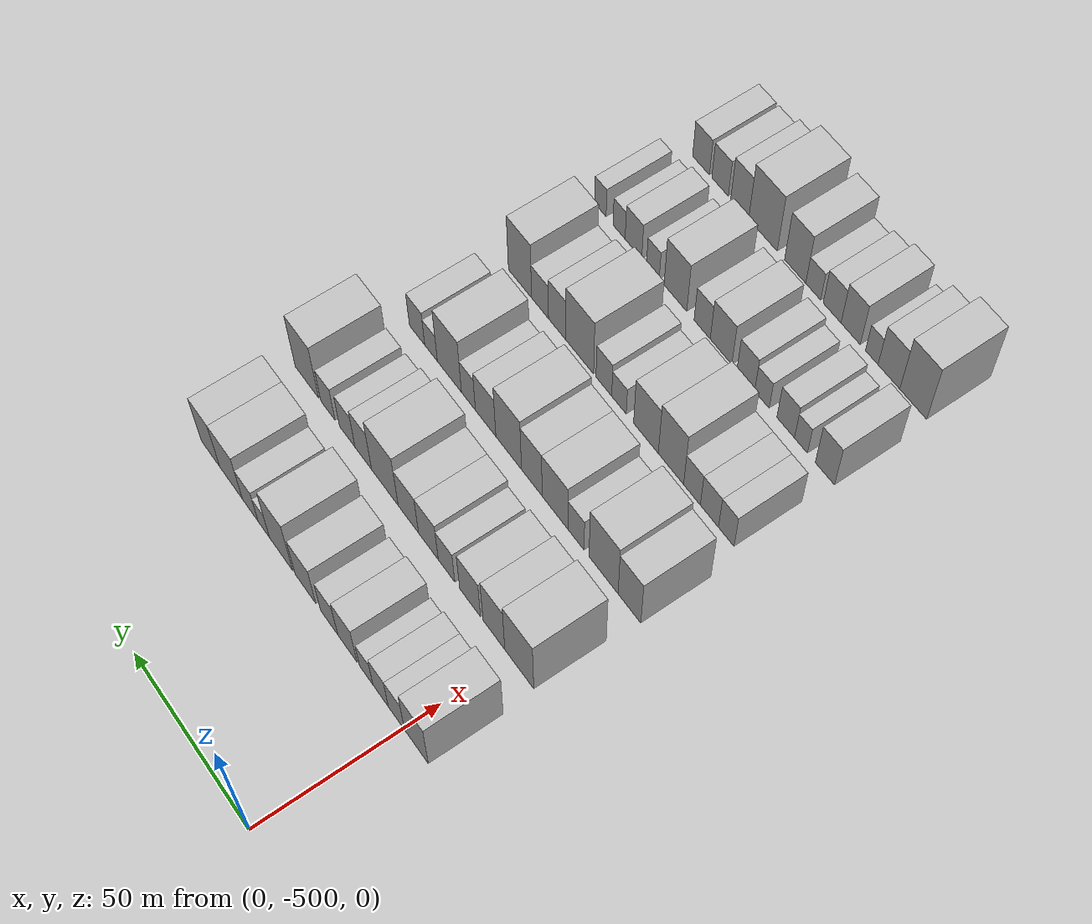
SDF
<sdf version="1.6">
 <world name="default">
  <model name="building_1">
   <static>1</static>
   <pose>50.0000 -505.1877 0 0.000000 0.000000 0.000000</pose>
   <link name="link">
    <pose>0 0 10.50 0 0 0</pose>
    <collision name="collision"><geometry><box><size>20.0000 9.6246 21.0000</size></box></geometry></collision>
    <visual name="visual">
     <cast_shadows>0</cast_shadows>
     <geometry><box><size>20.0000 9.6246 21.0000</size></box></geometry>
     <material>
      <script>
       <uri>model://HANNAS_wall/materials/scripts</uri>
       <uri>model://HANNAS_wall/materials/textures</uri>
       <name>vrc/HANNAS_wall</name>
      </script>
     </material>
    </visual>
   </link>
  </model>
  <model name="building_2">
   <static>1</static>
   <pose>50.0000 -497.0915 0 0.000000 0.000000 0.000000</pose>
   <link name="link">
    <pose>0 0 7.50 0 0 0</pose>
    <collision name="collision"><geometry><box><size>20.0000 6.5677 15.0000</size></box></geometry></collision>
    <visual name="visual">
     <cast_shadows>0</cast_shadows>
     <geometry><box><size>20.0000 6.5677 15.0000</size></box></geometry>
     <material>
      <script>
       <uri>model://HANNAS_wall/materials/scripts</uri>
       <uri>model://HANNAS_wall/materials/textures</uri>
       <name>vrc/HANNAS_wall</name>
      </script>
     </material>
    </visual>
   </link>
  </model>
  <model name="building_3">
   <static>1</static>
   <pose>50.0000 -490.6406 0 0.000000 0.000000 0.000000</pose>
   <link name="link">
    <pose>0 0 7.50 0 0 0</pose>
    <collision name="collision"><geometry><box><size>20.0000 6.3341 15.0000</size></box></geometry></collision>
    <visual name="visual">
     <cast_shadows>0</cast_shadows>
     <geometry><box><size>20.0000 6.3341 15.0000</size></box></geometry>
     <material>
      <script>
       <uri>model://HANNAS_wall/materials/scripts</uri>
       <uri>model://HANNAS_wall/materials/textures</uri>
       <name>vrc/HANNAS_wall</name>
      </script>
     </material>
    </visual>
   </link>
  </model>
  <model name="building_4">
   <static>1</static>
   <pose>50.0000 -484.6623 0 0.000000 0.000000 0.000000</pose>
   <link name="link">
    <pose>0 0 6.00 0 0 0</pose>
    <collision name="collision"><geometry><box><size>20.0000 5.6226 12.0000</size></box></geometry></collision>
    <visual name="visual">
     <cast_shadows>0</cast_shadows>
     <geometry><box><size>20.0000 5.6226 12.0000</size></box></geometry>
     <material>
      <script>
       <uri>model://HANNAS_wall/materials/scripts</uri>
       <uri>model://HANNAS_wall/materials/textures</uri>
       <name>vrc/HANNAS_wall</name>
      </script>
     </material>
    </visual>
   </link>
  </model>
  <model name="building_5">
   <static>1</static>
   <pose>50.0000 -476.7808 0 0.000000 0.000000 0.000000</pose>
   <link name="link">
    <pose>0 0 9.00 0 0 0</pose>
    <collision name="collision"><geometry><box><size>20.0000 8.1402 18.0000</size></box></geometry></collision>
    <visual name="visual">
     <cast_shadows>0</cast_shadows>
     <geometry><box><size>20.0000 8.1402 18.0000</size></box></geometry>
     <material>
      <script>
       <uri>model://HANNAS_wall/materials/scripts</uri>
       <uri>model://HANNAS_wall/materials/textures</uri>
       <name>vrc/HANNAS_wall</name>
      </script>
     </material>
    </visual>
   </link>
  </model>
  <model name="building_6">
   <static>1</static>
   <pose>50.0000 -469.0146 0 0.000000 0.000000 0.000000</pose>
   <link name="link">
    <pose>0 0 7.50 0 0 0</pose>
    <collision name="collision"><geometry><box><size>20.0000 7.3923 15.0000</size></box></geometry></collision>
    <visual name="visual">
     <cast_shadows>0</cast_shadows>
     <geometry><box><size>20.0000 7.3923 15.0000</size></box></geometry>
     <material>
      <script>
       <uri>model://HANNAS_wall/materials/scripts</uri>
       <uri>model://HANNAS_wall/materials/textures</uri>
       <name>vrc/HANNAS_wall</name>
      </script>
     </material>
    </visual>
   </link>
  </model>
  <model name="building_7">
   <static>1</static>
   <pose>50.0000 -458.8198 0 0.000000 0.000000 0.000000</pose>
   <link name="link">
    <pose>0 0 9.00 0 0 0</pose>
    <collision name="collision"><geometry><box><size>20.0000 8.9973 18.0000</size></box></geometry></collision>
    <visual name="visual">
     <cast_shadows>0</cast_shadows>
     <geometry><box><size>20.0000 8.9973 18.0000</size></box></geometry>
     <material>
      <script>
       <uri>model://HANNAS_wall/materials/scripts</uri>
       <uri>model://HANNAS_wall/materials/textures</uri>
       <name>vrc/HANNAS_wall</name>
      </script>
     </material>
    </visual>
   </link>
  </model>
  <model name="building_8">
   <static>1</static>
   <pose>50.0000 -448.1830 0 0.000000 0.000000 0.000000</pose>
   <link name="link">
    <pose>0 0 12.00 0 0 0</pose>
    <collision name="collision"><geometry><box><size>20.0000 10.2763 24.0000</size></box></geometry></collision>
    <visual name="visual">
     <cast_shadows>0</cast_shadows>
     <geometry><box><size>20.0000 10.2763 24.0000</size></box></geometry>
     <material>
      <script>
       <uri>model://HANNAS_wall/materials/scripts</uri>
       <uri>model://HANNAS_wall/materials/textures</uri>
       <name>vrc/HANNAS_wall</name>
      </script>
     </material>
    </visual>
   </link>
  </model>
  <model name="building_9">
   <static>1</static>
   <pose>50.0000 -440.5058 0 0.000000 0.000000 0.000000</pose>
   <link name="link">
    <pose>0 0 6.00 0 0 0</pose>
    <collision name="collision"><geometry><box><size>20.0000 5.0780 12.0000</size></box></geometry></collision>
    <visual name="visual">
     <cast_shadows>0</cast_shadows>
     <geometry><box><size>20.0000 5.0780 12.0000</size></box></geometry>
     <material>
      <script>
       <uri>model://HANNAS_wall/materials/scripts</uri>
       <uri>model://HANNAS_wall/materials/textures</uri>
       <name>vrc/HANNAS_wall</name>
      </script>
     </material>
    </visual>
   </link>
  </model>
  <model name="building_10">
   <static>1</static>
   <pose>50.0000 -434.4570 0 0.000000 0.000000 0.000000</pose>
   <link name="link">
    <pose>0 0 7.50 0 0 0</pose>
    <collision name="collision"><geometry><box><size>20.0000 7.0197 15.0000</size></box></geometry></collision>
    <visual name="visual">
     <cast_shadows>0</cast_shadows>
     <geometry><box><size>20.0000 7.0197 15.0000</size></box></geometry>
     <material>
      <script>
       <uri>model://HANNAS_wall/materials/scripts</uri>
       <uri>model://HANNAS_wall/materials/textures</uri>
       <name>vrc/HANNAS_wall</name>
      </script>
     </material>
    </visual>
   </link>
  </model>
  <model name="building_11">
   <static>1</static>
   <pose>50.0000 -425.7513 0 0.000000 0.000000 0.000000</pose>
   <link name="link">
    <pose>0 0 10.50 0 0 0</pose>
    <collision name="collision"><geometry><box><size>20.0000 10.3918 21.0000</size></box></geometry></collision>
    <visual name="visual">
     <cast_shadows>0</cast_shadows>
     <geometry><box><size>20.0000 10.3918 21.0000</size></box></geometry>
     <material>
      <script>
       <uri>model://HANNAS_wall/materials/scripts</uri>
       <uri>model://HANNAS_wall/materials/textures</uri>
       <name>vrc/HANNAS_wall</name>
      </script>
     </material>
    </visual>
   </link>
  </model>
  <model name="building_12">
   <static>1</static>
   <pose>50.0000 -416.2189 0 0.000000 0.000000 0.000000</pose>
   <link name="link">
    <pose>0 0 10.50 0 0 0</pose>
    <collision name="collision"><geometry><box><size>20.0000 8.6729 21.0000</size></box></geometry></collision>
    <visual name="visual">
     <cast_shadows>0</cast_shadows>
     <geometry><box><size>20.0000 8.6729 21.0000</size></box></geometry>
     <material>
      <script>
       <uri>model://HANNAS_wall/materials/scripts</uri>
       <uri>model://HANNAS_wall/materials/textures</uri>
       <name>vrc/HANNAS_wall</name>
      </script>
     </material>
    </visual>
   </link>
  </model>
  <model name="building_115">
   <static>1</static>
   <pose>79.0000 -503.2548 0 0.000000 0.000000 0.000000</pose>
   <link name="link">
    <pose>0 0 12.00 0 0 0</pose>
    <collision name="collision"><geometry><box><size>20.0000 11.4904 24.0000</size></box></geometry></collision>
    <visual name="visual">
     <cast_shadows>0</cast_shadows>
     <geometry><box><size>20.0000 11.4904 24.0000</size></box></geometry>
     <material>
      <script>
       <uri>model://HANNAS_wall/materials/scripts</uri>
       <uri>model://HANNAS_wall/materials/textures</uri>
       <name>vrc/HANNAS_wall</name>
      </script>
     </material>
    </visual>
   </link>
  </model>
  <model name="building_116">
   <static>1</static>
   <pose>79.0000 -493.1154 0 0.000000 0.000000 0.000000</pose>
   <link name="link">
    <pose>0 0 10.50 0 0 0</pose>
    <collision name="collision"><geometry><box><size>20.0000 8.7883 21.0000</size></box></geometry></collision>
    <visual name="visual">
     <cast_shadows>0</cast_shadows>
     <geometry><box><size>20.0000 8.7883 21.0000</size></box></geometry>
     <material>
      <script>
       <uri>model://HANNAS_wall/materials/scripts</uri>
       <uri>model://HANNAS_wall/materials/textures</uri>
       <name>vrc/HANNAS_wall</name>
      </script>
     </material>
    </visual>
   </link>
  </model>
  <model name="building_117">
   <static>1</static>
   <pose>79.0000 -483.4463 0 0.000000 0.000000 0.000000</pose>
   <link name="link">
    <pose>0 0 9.00 0 0 0</pose>
    <collision name="collision"><geometry><box><size>20.0000 8.5500 18.0000</size></box></geometry></collision>
    <visual name="visual">
     <cast_shadows>0</cast_shadows>
     <geometry><box><size>20.0000 8.5500 18.0000</size></box></geometry>
     <material>
      <script>
       <uri>model://HANNAS_wall/materials/scripts</uri>
       <uri>model://HANNAS_wall/materials/textures</uri>
       <name>vrc/HANNAS_wall</name>
      </script>
     </material>
    </visual>
   </link>
  </model>
  <model name="building_118">
   <static>1</static>
   <pose>79.0000 -473.7268 0 0.000000 0.000000 0.000000</pose>
   <link name="link">
    <pose>0 0 7.50 0 0 0</pose>
    <collision name="collision"><geometry><box><size>20.0000 6.8890 15.0000</size></box></geometry></collision>
    <visual name="visual">
     <cast_shadows>0</cast_shadows>
     <geometry><box><size>20.0000 6.8890 15.0000</size></box></geometry>
     <material>
      <script>
       <uri>model://HANNAS_wall/materials/scripts</uri>
       <uri>model://HANNAS_wall/materials/textures</uri>
       <name>vrc/HANNAS_wall</name>
      </script>
     </material>
    </visual>
   </link>
  </model>
  <model name="building_119">
   <static>1</static>
   <pose>79.0000 -466.1343 0 0.000000 0.000000 0.000000</pose>
   <link name="link">
    <pose>0 0 9.00 0 0 0</pose>
    <collision name="collision"><geometry><box><size>20.0000 8.2961 18.0000</size></box></geometry></collision>
    <visual name="visual">
     <cast_shadows>0</cast_shadows>
     <geometry><box><size>20.0000 8.2961 18.0000</size></box></geometry>
     <material>
      <script>
       <uri>model://HANNAS_wall/materials/scripts</uri>
       <uri>model://HANNAS_wall/materials/textures</uri>
       <name>vrc/HANNAS_wall</name>
      </script>
     </material>
    </visual>
   </link>
  </model>
  <model name="building_120">
   <static>1</static>
   <pose>79.0000 -457.6497 0 0.000000 0.000000 0.000000</pose>
   <link name="link">
    <pose>0 0 9.00 0 0 0</pose>
    <collision name="collision"><geometry><box><size>20.0000 8.6731 18.0000</size></box></geometry></collision>
    <visual name="visual">
     <cast_shadows>0</cast_shadows>
     <geometry><box><size>20.0000 8.6731 18.0000</size></box></geometry>
     <material>
      <script>
       <uri>model://HANNAS_wall/materials/scripts</uri>
       <uri>model://HANNAS_wall/materials/textures</uri>
       <name>vrc/HANNAS_wall</name>
      </script>
     </material>
    </visual>
   </link>
  </model>
  <model name="building_121">
   <static>1</static>
   <pose>79.0000 -447.5465 0 0.000000 0.000000 0.000000</pose>
   <link name="link">
    <pose>0 0 12.00 0 0 0</pose>
    <collision name="collision"><geometry><box><size>20.0000 11.5332 24.0000</size></box></geometry></collision>
    <visual name="visual">
     <cast_shadows>0</cast_shadows>
     <geometry><box><size>20.0000 11.5332 24.0000</size></box></geometry>
     <material>
      <script>
       <uri>model://HANNAS_wall/materials/scripts</uri>
       <uri>model://HANNAS_wall/materials/textures</uri>
       <name>vrc/HANNAS_wall</name>
      </script>
     </material>
    </visual>
   </link>
  </model>
  <model name="building_122">
   <static>1</static>
   <pose>79.0000 -438.1325 0 0.000000 0.000000 0.000000</pose>
   <link name="link">
    <pose>0 0 9.00 0 0 0</pose>
    <collision name="collision"><geometry><box><size>20.0000 7.2948 18.0000</size></box></geometry></collision>
    <visual name="visual">
     <cast_shadows>0</cast_shadows>
     <geometry><box><size>20.0000 7.2948 18.0000</size></box></geometry>
     <material>
      <script>
       <uri>model://HANNAS_wall/materials/scripts</uri>
       <uri>model://HANNAS_wall/materials/textures</uri>
       <name>vrc/HANNAS_wall</name>
      </script>
     </material>
    </visual>
   </link>
  </model>
  <model name="building_123">
   <static>1</static>
   <pose>79.0000 -431.0398 0 0.000000 0.000000 0.000000</pose>
   <link name="link">
    <pose>0 0 7.50 0 0 0</pose>
    <collision name="collision"><geometry><box><size>20.0000 6.8907 15.0000</size></box></geometry></collision>
    <visual name="visual">
     <cast_shadows>0</cast_shadows>
     <geometry><box><size>20.0000 6.8907 15.0000</size></box></geometry>
     <material>
      <script>
       <uri>model://HANNAS_wall/materials/scripts</uri>
       <uri>model://HANNAS_wall/materials/textures</uri>
       <name>vrc/HANNAS_wall</name>
      </script>
     </material>
    </visual>
   </link>
  </model>
  <model name="building_124">
   <static>1</static>
   <pose>79.0000 -422.3800 0 0.000000 0.000000 0.000000</pose>
   <link name="link">
    <pose>0 0 7.50 0 0 0</pose>
    <collision name="collision"><geometry><box><size>20.0000 6.4289 15.0000</size></box></geometry></collision>
    <visual name="visual">
     <cast_shadows>0</cast_shadows>
     <geometry><box><size>20.0000 6.4289 15.0000</size></box></geometry>
     <material>
      <script>
       <uri>model://HANNAS_wall/materials/scripts</uri>
       <uri>model://HANNAS_wall/materials/textures</uri>
       <name>vrc/HANNAS_wall</name>
      </script>
     </material>
    </visual>
   </link>
  </model>
  <model name="building_125">
   <static>1</static>
   <pose>79.0000 -412.8363 0 0.000000 0.000000 0.000000</pose>
   <link name="link">
    <pose>0 0 12.00 0 0 0</pose>
    <collision name="collision"><geometry><box><size>20.0000 10.6585 24.0000</size></box></geometry></collision>
    <visual name="visual">
     <cast_shadows>0</cast_shadows>
     <geometry><box><size>20.0000 10.6585 24.0000</size></box></geometry>
     <material>
      <script>
       <uri>model://HANNAS_wall/materials/scripts</uri>
       <uri>model://HANNAS_wall/materials/textures</uri>
       <name>vrc/HANNAS_wall</name>
      </script>
     </material>
    </visual>
   </link>
  </model>
  <model name="building_229">
   <static>1</static>
   <pose>108.0000 -505.5721 0 0.000000 0.000000 0.000000</pose>
   <link name="link">
    <pose>0 0 10.50 0 0 0</pose>
    <collision name="collision"><geometry><box><size>20.0000 8.8557 21.0000</size></box></geometry></collision>
    <visual name="visual">
     <cast_shadows>0</cast_shadows>
     <geometry><box><size>20.0000 8.8557 21.0000</size></box></geometry>
     <material>
      <script>
       <uri>model://HANNAS_wall/materials/scripts</uri>
       <uri>model://HANNAS_wall/materials/textures</uri>
       <name>vrc/HANNAS_wall</name>
      </script>
     </material>
    </visual>
   </link>
  </model>
  <model name="building_230">
   <static>1</static>
   <pose>108.0000 -495.4187 0 0.000000 0.000000 0.000000</pose>
   <link name="link">
    <pose>0 0 12.00 0 0 0</pose>
    <collision name="collision"><geometry><box><size>20.0000 11.4512 24.0000</size></box></geometry></collision>
    <visual name="visual">
     <cast_shadows>0</cast_shadows>
     <geometry><box><size>20.0000 11.4512 24.0000</size></box></geometry>
     <material>
      <script>
       <uri>model://HANNAS_wall/materials/scripts</uri>
       <uri>model://HANNAS_wall/materials/textures</uri>
       <name>vrc/HANNAS_wall</name>
      </script>
     </material>
    </visual>
   </link>
  </model>
  <model name="building_231">
   <static>1</static>
   <pose>108.0000 -484.4381 0 0.000000 0.000000 0.000000</pose>
   <link name="link">
    <pose>0 0 7.50 0 0 0</pose>
    <collision name="collision"><geometry><box><size>20.0000 6.5100 15.0000</size></box></geometry></collision>
    <visual name="visual">
     <cast_shadows>0</cast_shadows>
     <geometry><box><size>20.0000 6.5100 15.0000</size></box></geometry>
     <material>
      <script>
       <uri>model://HANNAS_wall/materials/scripts</uri>
       <uri>model://HANNAS_wall/materials/textures</uri>
       <name>vrc/HANNAS_wall</name>
      </script>
     </material>
    </visual>
   </link>
  </model>
  <model name="building_232">
   <static>1</static>
   <pose>108.0000 -475.9594 0 0.000000 0.000000 0.000000</pose>
   <link name="link">
    <pose>0 0 10.50 0 0 0</pose>
    <collision name="collision"><geometry><box><size>20.0000 10.4474 21.0000</size></box></geometry></collision>
    <visual name="visual">
     <cast_shadows>0</cast_shadows>
     <geometry><box><size>20.0000 10.4474 21.0000</size></box></geometry>
     <material>
      <script>
       <uri>model://HANNAS_wall/materials/scripts</uri>
       <uri>model://HANNAS_wall/materials/textures</uri>
       <name>vrc/HANNAS_wall</name>
      </script>
     </material>
    </visual>
   </link>
  </model>
  <model name="building_233">
   <static>1</static>
   <pose>108.0000 -466.4582 0 0.000000 0.000000 0.000000</pose>
   <link name="link">
    <pose>0 0 10.50 0 0 0</pose>
    <collision name="collision"><geometry><box><size>20.0000 8.5550 21.0000</size></box></geometry></collision>
    <visual name="visual">
     <cast_shadows>0</cast_shadows>
     <geometry><box><size>20.0000 8.5550 21.0000</size></box></geometry>
     <material>
      <script>
       <uri>model://HANNAS_wall/materials/scripts</uri>
       <uri>model://HANNAS_wall/materials/textures</uri>
       <name>vrc/HANNAS_wall</name>
      </script>
     </material>
    </visual>
   </link>
  </model>
  <model name="building_234">
   <static>1</static>
   <pose>108.0000 -456.7893 0 0.000000 0.000000 0.000000</pose>
   <link name="link">
    <pose>0 0 12.00 0 0 0</pose>
    <collision name="collision"><geometry><box><size>20.0000 10.7829 24.0000</size></box></geometry></collision>
    <visual name="visual">
     <cast_shadows>0</cast_shadows>
     <geometry><box><size>20.0000 10.7829 24.0000</size></box></geometry>
     <material>
      <script>
       <uri>model://HANNAS_wall/materials/scripts</uri>
       <uri>model://HANNAS_wall/materials/textures</uri>
       <name>vrc/HANNAS_wall</name>
      </script>
     </material>
    </visual>
   </link>
  </model>
  <model name="building_235">
   <static>1</static>
   <pose>108.0000 -447.0462 0 0.000000 0.000000 0.000000</pose>
   <link name="link">
    <pose>0 0 9.00 0 0 0</pose>
    <collision name="collision"><geometry><box><size>20.0000 8.7033 18.0000</size></box></geometry></collision>
    <visual name="visual">
     <cast_shadows>0</cast_shadows>
     <geometry><box><size>20.0000 8.7033 18.0000</size></box></geometry>
     <material>
      <script>
       <uri>model://HANNAS_wall/materials/scripts</uri>
       <uri>model://HANNAS_wall/materials/textures</uri>
       <name>vrc/HANNAS_wall</name>
      </script>
     </material>
    </visual>
   </link>
  </model>
  <model name="building_236">
   <static>1</static>
   <pose>108.0000 -439.6853 0 0.000000 0.000000 0.000000</pose>
   <link name="link">
    <pose>0 0 7.50 0 0 0</pose>
    <collision name="collision"><geometry><box><size>20.0000 6.0184 15.0000</size></box></geometry></collision>
    <visual name="visual">
     <cast_shadows>0</cast_shadows>
     <geometry><box><size>20.0000 6.0184 15.0000</size></box></geometry>
     <material>
      <script>
       <uri>model://HANNAS_wall/materials/scripts</uri>
       <uri>model://HANNAS_wall/materials/textures</uri>
       <name>vrc/HANNAS_wall</name>
      </script>
     </material>
    </visual>
   </link>
  </model>
  <model name="building_237">
   <static>1</static>
   <pose>108.0000 -431.4216 0 0.000000 0.000000 0.000000</pose>
   <link name="link">
    <pose>0 0 12.00 0 0 0</pose>
    <collision name="collision"><geometry><box><size>20.0000 10.5092 24.0000</size></box></geometry></collision>
    <visual name="visual">
     <cast_shadows>0</cast_shadows>
     <geometry><box><size>20.0000 10.5092 24.0000</size></box></geometry>
     <material>
      <script>
       <uri>model://HANNAS_wall/materials/scripts</uri>
       <uri>model://HANNAS_wall/materials/textures</uri>
       <name>vrc/HANNAS_wall</name>
      </script>
     </material>
    </visual>
   </link>
  </model>
  <model name="building_238">
   <static>1</static>
   <pose>108.0000 -423.3727 0 0.000000 0.000000 0.000000</pose>
   <link name="link">
    <pose>0 0 6.00 0 0 0</pose>
    <collision name="collision"><geometry><box><size>20.0000 5.5886 12.0000</size></box></geometry></collision>
    <visual name="visual">
     <cast_shadows>0</cast_shadows>
     <geometry><box><size>20.0000 5.5886 12.0000</size></box></geometry>
     <material>
      <script>
       <uri>model://HANNAS_wall/materials/scripts</uri>
       <uri>model://HANNAS_wall/materials/textures</uri>
       <name>vrc/HANNAS_wall</name>
      </script>
     </material>
    </visual>
   </link>
  </model>
  <model name="building_239">
   <static>1</static>
   <pose>108.0000 -417.1980 0 0.000000 0.000000 0.000000</pose>
   <link name="link">
    <pose>0 0 7.50 0 0 0</pose>
    <collision name="collision"><geometry><box><size>20.0000 6.7609 15.0000</size></box></geometry></collision>
    <visual name="visual">
     <cast_shadows>0</cast_shadows>
     <geometry><box><size>20.0000 6.7609 15.0000</size></box></geometry>
     <material>
      <script>
       <uri>model://HANNAS_wall/materials/scripts</uri>
       <uri>model://HANNAS_wall/materials/textures</uri>
       <name>vrc/HANNAS_wall</name>
      </script>
     </material>
    </visual>
   </link>
  </model>
  <model name="building_339">
   <static>1</static>
   <pose>137.0000 -503.9896 0 0.000000 0.000000 0.000000</pose>
   <link name="link">
    <pose>0 0 7.50 0 0 0</pose>
    <collision name="collision"><geometry><box><size>20.0000 6.0208 15.0000</size></box></geometry></collision>
    <visual name="visual">
     <cast_shadows>0</cast_shadows>
     <geometry><box><size>20.0000 6.0208 15.0000</size></box></geometry>
     <material>
      <script>
       <uri>model://HANNAS_wall/materials/scripts</uri>
       <uri>model://HANNAS_wall/materials/textures</uri>
       <name>vrc/HANNAS_wall</name>
      </script>
     </material>
    </visual>
   </link>
  </model>
  <model name="building_340">
   <static>1</static>
   <pose>137.0000 -497.4619 0 0.000000 0.000000 0.000000</pose>
   <link name="link">
    <pose>0 0 7.50 0 0 0</pose>
    <collision name="collision"><geometry><box><size>20.0000 7.0346 15.0000</size></box></geometry></collision>
    <visual name="visual">
     <cast_shadows>0</cast_shadows>
     <geometry><box><size>20.0000 7.0346 15.0000</size></box></geometry>
     <material>
      <script>
       <uri>model://HANNAS_wall/materials/scripts</uri>
       <uri>model://HANNAS_wall/materials/textures</uri>
       <name>vrc/HANNAS_wall</name>
      </script>
     </material>
    </visual>
   </link>
  </model>
  <model name="building_341">
   <static>1</static>
   <pose>137.0000 -490.6629 0 0.000000 0.000000 0.000000</pose>
   <link name="link">
    <pose>0 0 7.50 0 0 0</pose>
    <collision name="collision"><geometry><box><size>20.0000 6.5634 15.0000</size></box></geometry></collision>
    <visual name="visual">
     <cast_shadows>0</cast_shadows>
     <geometry><box><size>20.0000 6.5634 15.0000</size></box></geometry>
     <material>
      <script>
       <uri>model://HANNAS_wall/materials/scripts</uri>
       <uri>model://HANNAS_wall/materials/textures</uri>
       <name>vrc/HANNAS_wall</name>
      </script>
     </material>
    </visual>
   </link>
  </model>
  <model name="building_342">
   <static>1</static>
   <pose>137.0000 -482.3569 0 0.000000 0.000000 0.000000</pose>
   <link name="link">
    <pose>0 0 12.00 0 0 0</pose>
    <collision name="collision"><geometry><box><size>20.0000 10.0487 24.0000</size></box></geometry></collision>
    <visual name="visual">
     <cast_shadows>0</cast_shadows>
     <geometry><box><size>20.0000 10.0487 24.0000</size></box></geometry>
     <material>
      <script>
       <uri>model://HANNAS_wall/materials/scripts</uri>
       <uri>model://HANNAS_wall/materials/textures</uri>
       <name>vrc/HANNAS_wall</name>
      </script>
     </material>
    </visual>
   </link>
  </model>
  <model name="building_343">
   <static>1</static>
   <pose>137.0000 -472.3465 0 0.000000 0.000000 0.000000</pose>
   <link name="link">
    <pose>0 0 10.50 0 0 0</pose>
    <collision name="collision"><geometry><box><size>20.0000 9.9721 21.0000</size></box></geometry></collision>
    <visual name="visual">
     <cast_shadows>0</cast_shadows>
     <geometry><box><size>20.0000 9.9721 21.0000</size></box></geometry>
     <material>
      <script>
       <uri>model://HANNAS_wall/materials/scripts</uri>
       <uri>model://HANNAS_wall/materials/textures</uri>
       <name>vrc/HANNAS_wall</name>
      </script>
     </material>
    </visual>
   </link>
  </model>
  <model name="building_344">
   <static>1</static>
   <pose>137.0000 -461.3777 0 0.000000 0.000000 0.000000</pose>
   <link name="link">
    <pose>0 0 6.00 0 0 0</pose>
    <collision name="collision"><geometry><box><size>20.0000 5.9655 12.0000</size></box></geometry></collision>
    <visual name="visual">
     <cast_shadows>0</cast_shadows>
     <geometry><box><size>20.0000 5.9655 12.0000</size></box></geometry>
     <material>
      <script>
       <uri>model://HANNAS_wall/materials/scripts</uri>
       <uri>model://HANNAS_wall/materials/textures</uri>
       <name>vrc/HANNAS_wall</name>
      </script>
     </material>
    </visual>
   </link>
  </model>
  <model name="building_345">
   <static>1</static>
   <pose>137.0000 -455.1434 0 0.000000 0.000000 0.000000</pose>
   <link name="link">
    <pose>0 0 7.50 0 0 0</pose>
    <collision name="collision"><geometry><box><size>20.0000 6.5033 15.0000</size></box></geometry></collision>
    <visual name="visual">
     <cast_shadows>0</cast_shadows>
     <geometry><box><size>20.0000 6.5033 15.0000</size></box></geometry>
     <material>
      <script>
       <uri>model://HANNAS_wall/materials/scripts</uri>
       <uri>model://HANNAS_wall/materials/textures</uri>
       <name>vrc/HANNAS_wall</name>
      </script>
     </material>
    </visual>
   </link>
  </model>
  <model name="building_346">
   <static>1</static>
   <pose>137.0000 -445.0712 0 0.000000 0.000000 0.000000</pose>
   <link name="link">
    <pose>0 0 12.00 0 0 0</pose>
    <collision name="collision"><geometry><box><size>20.0000 11.6410 24.0000</size></box></geometry></collision>
    <visual name="visual">
     <cast_shadows>0</cast_shadows>
     <geometry><box><size>20.0000 11.6410 24.0000</size></box></geometry>
     <material>
      <script>
       <uri>model://HANNAS_wall/materials/scripts</uri>
       <uri>model://HANNAS_wall/materials/textures</uri>
       <name>vrc/HANNAS_wall</name>
      </script>
     </material>
    </visual>
   </link>
  </model>
  <model name="building_347">
   <static>1</static>
   <pose>137.0000 -435.5443 0 0.000000 0.000000 0.000000</pose>
   <link name="link">
    <pose>0 0 9.00 0 0 0</pose>
    <collision name="collision"><geometry><box><size>20.0000 7.4128 18.0000</size></box></geometry></collision>
    <visual name="visual">
     <cast_shadows>0</cast_shadows>
     <geometry><box><size>20.0000 7.4128 18.0000</size></box></geometry>
     <material>
      <script>
       <uri>model://HANNAS_wall/materials/scripts</uri>
       <uri>model://HANNAS_wall/materials/textures</uri>
       <name>vrc/HANNAS_wall</name>
      </script>
     </material>
    </visual>
   </link>
  </model>
  <model name="building_348">
   <static>1</static>
   <pose>137.0000 -428.1903 0 0.000000 0.000000 0.000000</pose>
   <link name="link">
    <pose>0 0 7.50 0 0 0</pose>
    <collision name="collision"><geometry><box><size>20.0000 7.2952 15.0000</size></box></geometry></collision>
    <visual name="visual">
     <cast_shadows>0</cast_shadows>
     <geometry><box><size>20.0000 7.2952 15.0000</size></box></geometry>
     <material>
      <script>
       <uri>model://HANNAS_wall/materials/scripts</uri>
       <uri>model://HANNAS_wall/materials/textures</uri>
       <name>vrc/HANNAS_wall</name>
      </script>
     </material>
    </visual>
   </link>
  </model>
  <model name="building_349">
   <static>1</static>
   <pose>137.0000 -419.5020 0 0.000000 0.000000 0.000000</pose>
   <link name="link">
    <pose>0 0 12.00 0 0 0</pose>
    <collision name="collision"><geometry><box><size>20.0000 10.0815 24.0000</size></box></geometry></collision>
    <visual name="visual">
     <cast_shadows>0</cast_shadows>
     <geometry><box><size>20.0000 10.0815 24.0000</size></box></geometry>
     <material>
      <script>
       <uri>model://HANNAS_wall/materials/scripts</uri>
       <uri>model://HANNAS_wall/materials/textures</uri>
       <name>vrc/HANNAS_wall</name>
      </script>
     </material>
    </visual>
   </link>
  </model>
  <model name="building_453">
   <static>1</static>
   <pose>166.0000 -504.3535 0 0.000000 0.000000 0.000000</pose>
   <link name="link">
    <pose>0 0 9.00 0 0 0</pose>
    <collision name="collision"><geometry><box><size>20.0000 7.2931 18.0000</size></box></geometry></collision>
    <visual name="visual">
     <cast_shadows>0</cast_shadows>
     <geometry><box><size>20.0000 7.2931 18.0000</size></box></geometry>
     <material>
      <script>
       <uri>model://HANNAS_wall/materials/scripts</uri>
       <uri>model://HANNAS_wall/materials/textures</uri>
       <name>vrc/HANNAS_wall</name>
      </script>
     </material>
    </visual>
   </link>
  </model>
  <model name="building_454">
   <static>1</static>
   <pose>166.0000 -495.2117 0 0.000000 0.000000 0.000000</pose>
   <link name="link">
    <pose>0 0 6.00 0 0 0</pose>
    <collision name="collision"><geometry><box><size>20.0000 4.9904 12.0000</size></box></geometry></collision>
    <visual name="visual">
     <cast_shadows>0</cast_shadows>
     <geometry><box><size>20.0000 4.9904 12.0000</size></box></geometry>
     <material>
      <script>
       <uri>model://HANNAS_wall/materials/scripts</uri>
       <uri>model://HANNAS_wall/materials/textures</uri>
       <name>vrc/HANNAS_wall</name>
      </script>
     </material>
    </visual>
   </link>
  </model>
  <model name="building_455">
   <static>1</static>
   <pose>166.0000 -489.3011 0 0.000000 0.000000 0.000000</pose>
   <link name="link">
    <pose>0 0 7.50 0 0 0</pose>
    <collision name="collision"><geometry><box><size>20.0000 6.8309 15.0000</size></box></geometry></collision>
    <visual name="visual">
     <cast_shadows>0</cast_shadows>
     <geometry><box><size>20.0000 6.8309 15.0000</size></box></geometry>
     <material>
      <script>
       <uri>model://HANNAS_wall/materials/scripts</uri>
       <uri>model://HANNAS_wall/materials/textures</uri>
       <name>vrc/HANNAS_wall</name>
      </script>
     </material>
    </visual>
   </link>
  </model>
  <model name="building_456">
   <static>1</static>
   <pose>166.0000 -480.0038 0 0.000000 0.000000 0.000000</pose>
   <link name="link">
    <pose>0 0 6.00 0 0 0</pose>
    <collision name="collision"><geometry><box><size>20.0000 5.7637 12.0000</size></box></geometry></collision>
    <visual name="visual">
     <cast_shadows>0</cast_shadows>
     <geometry><box><size>20.0000 5.7637 12.0000</size></box></geometry>
     <material>
      <script>
       <uri>model://HANNAS_wall/materials/scripts</uri>
       <uri>model://HANNAS_wall/materials/textures</uri>
       <name>vrc/HANNAS_wall</name>
      </script>
     </material>
    </visual>
   </link>
  </model>
  <model name="building_457">
   <static>1</static>
   <pose>166.0000 -473.6042 0 0.000000 0.000000 0.000000</pose>
   <link name="link">
    <pose>0 0 7.50 0 0 0</pose>
    <collision name="collision"><geometry><box><size>20.0000 7.0355 15.0000</size></box></geometry></collision>
    <visual name="visual">
     <cast_shadows>0</cast_shadows>
     <geometry><box><size>20.0000 7.0355 15.0000</size></box></geometry>
     <material>
      <script>
       <uri>model://HANNAS_wall/materials/scripts</uri>
       <uri>model://HANNAS_wall/materials/textures</uri>
       <name>vrc/HANNAS_wall</name>
      </script>
     </material>
    </visual>
   </link>
  </model>
  <model name="building_458">
   <static>1</static>
   <pose>166.0000 -463.7223 0 0.000000 0.000000 0.000000</pose>
   <link name="link">
    <pose>0 0 9.00 0 0 0</pose>
    <collision name="collision"><geometry><box><size>20.0000 8.7282 18.0000</size></box></geometry></collision>
    <visual name="visual">
     <cast_shadows>0</cast_shadows>
     <geometry><box><size>20.0000 8.7282 18.0000</size></box></geometry>
     <material>
      <script>
       <uri>model://HANNAS_wall/materials/scripts</uri>
       <uri>model://HANNAS_wall/materials/textures</uri>
       <name>vrc/HANNAS_wall</name>
      </script>
     </material>
    </visual>
   </link>
  </model>
  <model name="building_459">
   <static>1</static>
   <pose>166.0000 -456.0624 0 0.000000 0.000000 0.000000</pose>
   <link name="link">
    <pose>0 0 7.50 0 0 0</pose>
    <collision name="collision"><geometry><box><size>20.0000 6.5917 15.0000</size></box></geometry></collision>
    <visual name="visual">
     <cast_shadows>0</cast_shadows>
     <geometry><box><size>20.0000 6.5917 15.0000</size></box></geometry>
     <material>
      <script>
       <uri>model://HANNAS_wall/materials/scripts</uri>
       <uri>model://HANNAS_wall/materials/textures</uri>
       <name>vrc/HANNAS_wall</name>
      </script>
     </material>
    </visual>
   </link>
  </model>
  <model name="building_460">
   <static>1</static>
   <pose>166.0000 -445.0530 0 0.000000 0.000000 0.000000</pose>
   <link name="link">
    <pose>0 0 10.50 0 0 0</pose>
    <collision name="collision"><geometry><box><size>20.0000 9.4271 21.0000</size></box></geometry></collision>
    <visual name="visual">
     <cast_shadows>0</cast_shadows>
     <geometry><box><size>20.0000 9.4271 21.0000</size></box></geometry>
     <material>
      <script>
       <uri>model://HANNAS_wall/materials/scripts</uri>
       <uri>model://HANNAS_wall/materials/textures</uri>
       <name>vrc/HANNAS_wall</name>
      </script>
     </material>
    </visual>
   </link>
  </model>
  <model name="building_461">
   <static>1</static>
   <pose>166.0000 -435.6546 0 0.000000 0.000000 0.000000</pose>
   <link name="link">
    <pose>0 0 6.00 0 0 0</pose>
    <collision name="collision"><geometry><box><size>20.0000 5.3699 12.0000</size></box></geometry></collision>
    <visual name="visual">
     <cast_shadows>0</cast_shadows>
     <geometry><box><size>20.0000 5.3699 12.0000</size></box></geometry>
     <material>
      <script>
       <uri>model://HANNAS_wall/materials/scripts</uri>
       <uri>model://HANNAS_wall/materials/textures</uri>
       <name>vrc/HANNAS_wall</name>
      </script>
     </material>
    </visual>
   </link>
  </model>
  <model name="building_462">
   <static>1</static>
   <pose>166.0000 -427.4308 0 0.000000 0.000000 0.000000</pose>
   <link name="link">
    <pose>0 0 7.50 0 0 0</pose>
    <collision name="collision"><geometry><box><size>20.0000 7.0776 15.0000</size></box></geometry></collision>
    <visual name="visual">
     <cast_shadows>0</cast_shadows>
     <geometry><box><size>20.0000 7.0776 15.0000</size></box></geometry>
     <material>
      <script>
       <uri>model://HANNAS_wall/materials/scripts</uri>
       <uri>model://HANNAS_wall/materials/textures</uri>
       <name>vrc/HANNAS_wall</name>
      </script>
     </material>
    </visual>
   </link>
  </model>
  <model name="building_463">
   <static>1</static>
   <pose>166.0000 -421.3100 0 0.000000 0.000000 0.000000</pose>
   <link name="link">
    <pose>0 0 6.00 0 0 0</pose>
    <collision name="collision"><geometry><box><size>20.0000 5.1640 12.0000</size></box></geometry></collision>
    <visual name="visual">
     <cast_shadows>0</cast_shadows>
     <geometry><box><size>20.0000 5.1640 12.0000</size></box></geometry>
     <material>
      <script>
       <uri>model://HANNAS_wall/materials/scripts</uri>
       <uri>model://HANNAS_wall/materials/textures</uri>
       <name>vrc/HANNAS_wall</name>
      </script>
     </material>
    </visual>
   </link>
  </model>
  <model name="building_464">
   <static>1</static>
   <pose>166.0000 -413.2680 0 0.000000 0.000000 0.000000</pose>
   <link name="link">
    <pose>0 0 6.00 0 0 0</pose>
    <collision name="collision"><geometry><box><size>20.0000 4.9199 12.0000</size></box></geometry></collision>
    <visual name="visual">
     <cast_shadows>0</cast_shadows>
     <geometry><box><size>20.0000 4.9199 12.0000</size></box></geometry>
     <material>
      <script>
       <uri>model://HANNAS_wall/materials/scripts</uri>
       <uri>model://HANNAS_wall/materials/textures</uri>
       <name>vrc/HANNAS_wall</name>
      </script>
     </material>
    </visual>
   </link>
  </model>
  <model name="building_566">
   <static>1</static>
   <pose>195.0000 -501.9317 0 0.000000 0.000000 0.000000</pose>
   <link name="link">
    <pose>0 0 12.00 0 0 0</pose>
    <collision name="collision"><geometry><box><size>20.0000 10.1366 24.0000</size></box></geometry></collision>
    <visual name="visual">
     <cast_shadows>0</cast_shadows>
     <geometry><box><size>20.0000 10.1366 24.0000</size></box></geometry>
     <material>
      <script>
       <uri>model://HANNAS_wall/materials/scripts</uri>
       <uri>model://HANNAS_wall/materials/textures</uri>
       <name>vrc/HANNAS_wall</name>
      </script>
     </material>
    </visual>
   </link>
  </model>
  <model name="building_567">
   <static>1</static>
   <pose>195.0000 -492.7155 0 0.000000 0.000000 0.000000</pose>
   <link name="link">
    <pose>0 0 9.00 0 0 0</pose>
    <collision name="collision"><geometry><box><size>20.0000 8.2958 18.0000</size></box></geometry></collision>
    <visual name="visual">
     <cast_shadows>0</cast_shadows>
     <geometry><box><size>20.0000 8.2958 18.0000</size></box></geometry>
     <material>
      <script>
       <uri>model://HANNAS_wall/materials/scripts</uri>
       <uri>model://HANNAS_wall/materials/textures</uri>
       <name>vrc/HANNAS_wall</name>
      </script>
     </material>
    </visual>
   </link>
  </model>
  <model name="building_568">
   <static>1</static>
   <pose>195.0000 -486.1540 0 0.000000 0.000000 0.000000</pose>
   <link name="link">
    <pose>0 0 6.00 0 0 0</pose>
    <collision name="collision"><geometry><box><size>20.0000 4.8271 12.0000</size></box></geometry></collision>
    <visual name="visual">
     <cast_shadows>0</cast_shadows>
     <geometry><box><size>20.0000 4.8271 12.0000</size></box></geometry>
     <material>
      <script>
       <uri>model://HANNAS_wall/materials/scripts</uri>
       <uri>model://HANNAS_wall/materials/textures</uri>
       <name>vrc/HANNAS_wall</name>
      </script>
     </material>
    </visual>
   </link>
  </model>
  <model name="building_569">
   <static>1</static>
   <pose>195.0000 -477.9823 0 0.000000 0.000000 0.000000</pose>
   <link name="link">
    <pose>0 0 9.00 0 0 0</pose>
    <collision name="collision"><geometry><box><size>20.0000 7.5164 18.0000</size></box></geometry></collision>
    <visual name="visual">
     <cast_shadows>0</cast_shadows>
     <geometry><box><size>20.0000 7.5164 18.0000</size></box></geometry>
     <material>
      <script>
       <uri>model://HANNAS_wall/materials/scripts</uri>
       <uri>model://HANNAS_wall/materials/textures</uri>
       <name>vrc/HANNAS_wall</name>
      </script>
     </material>
    </visual>
   </link>
  </model>
  <model name="building_570">
   <static>1</static>
   <pose>195.0000 -470.7055 0 0.000000 0.000000 0.000000</pose>
   <link name="link">
    <pose>0 0 7.50 0 0 0</pose>
    <collision name="collision"><geometry><box><size>20.0000 7.0371 15.0000</size></box></geometry></collision>
    <visual name="visual">
     <cast_shadows>0</cast_shadows>
     <geometry><box><size>20.0000 7.0371 15.0000</size></box></geometry>
     <material>
      <script>
       <uri>model://HANNAS_wall/materials/scripts</uri>
       <uri>model://HANNAS_wall/materials/textures</uri>
       <name>vrc/HANNAS_wall</name>
      </script>
     </material>
    </visual>
   </link>
  </model>
  <model name="building_571">
   <static>1</static>
   <pose>195.0000 -463.2095 0 0.000000 0.000000 0.000000</pose>
   <link name="link">
    <pose>0 0 6.00 0 0 0</pose>
    <collision name="collision"><geometry><box><size>20.0000 5.9550 12.0000</size></box></geometry></collision>
    <visual name="visual">
     <cast_shadows>0</cast_shadows>
     <geometry><box><size>20.0000 5.9550 12.0000</size></box></geometry>
     <material>
      <script>
       <uri>model://HANNAS_wall/materials/scripts</uri>
       <uri>model://HANNAS_wall/materials/textures</uri>
       <name>vrc/HANNAS_wall</name>
      </script>
     </material>
    </visual>
   </link>
  </model>
  <model name="building_572">
   <static>1</static>
   <pose>195.0000 -455.9752 0 0.000000 0.000000 0.000000</pose>
   <link name="link">
    <pose>0 0 10.50 0 0 0</pose>
    <collision name="collision"><geometry><box><size>20.0000 8.5135 21.0000</size></box></geometry></collision>
    <visual name="visual">
     <cast_shadows>0</cast_shadows>
     <geometry><box><size>20.0000 8.5135 21.0000</size></box></geometry>
     <material>
      <script>
       <uri>model://HANNAS_wall/materials/scripts</uri>
       <uri>model://HANNAS_wall/materials/textures</uri>
       <name>vrc/HANNAS_wall</name>
      </script>
     </material>
    </visual>
   </link>
  </model>
  <model name="building_573">
   <static>1</static>
   <pose>195.0000 -442.8539 0 0.000000 0.000000 0.000000</pose>
   <link name="link">
    <pose>0 0 12.00 0 0 0</pose>
    <collision name="collision"><geometry><box><size>20.0000 11.7291 24.0000</size></box></geometry></collision>
    <visual name="visual">
     <cast_shadows>0</cast_shadows>
     <geometry><box><size>20.0000 11.7291 24.0000</size></box></geometry>
     <material>
      <script>
       <uri>model://HANNAS_wall/materials/scripts</uri>
       <uri>model://HANNAS_wall/materials/textures</uri>
       <name>vrc/HANNAS_wall</name>
      </script>
     </material>
    </visual>
   </link>
  </model>
  <model name="building_574">
   <static>1</static>
   <pose>195.0000 -433.2666 0 0.000000 0.000000 0.000000</pose>
   <link name="link">
    <pose>0 0 9.00 0 0 0</pose>
    <collision name="collision"><geometry><box><size>20.0000 7.4455 18.0000</size></box></geometry></collision>
    <visual name="visual">
     <cast_shadows>0</cast_shadows>
     <geometry><box><size>20.0000 7.4455 18.0000</size></box></geometry>
     <material>
      <script>
       <uri>model://HANNAS_wall/materials/scripts</uri>
       <uri>model://HANNAS_wall/materials/textures</uri>
       <name>vrc/HANNAS_wall</name>
      </script>
     </material>
    </visual>
   </link>
  </model>
  <model name="building_575">
   <static>1</static>
   <pose>195.0000 -425.0647 0 0.000000 0.000000 0.000000</pose>
   <link name="link">
    <pose>0 0 7.50 0 0 0</pose>
    <collision name="collision"><geometry><box><size>20.0000 6.9583 15.0000</size></box></geometry></collision>
    <visual name="visual">
     <cast_shadows>0</cast_shadows>
     <geometry><box><size>20.0000 6.9583 15.0000</size></box></geometry>
     <material>
      <script>
       <uri>model://HANNAS_wall/materials/scripts</uri>
       <uri>model://HANNAS_wall/materials/textures</uri>
       <name>vrc/HANNAS_wall</name>
      </script>
     </material>
    </visual>
   </link>
  </model>
  <model name="building_576">
   <static>1</static>
   <pose>195.0000 -417.0067 0 0.000000 0.000000 0.000000</pose>
   <link name="link">
    <pose>0 0 7.50 0 0 0</pose>
    <collision name="collision"><geometry><box><size>20.0000 7.1575 15.0000</size></box></geometry></collision>
    <visual name="visual">
     <cast_shadows>0</cast_shadows>
     <geometry><box><size>20.0000 7.1575 15.0000</size></box></geometry>
     <material>
      <script>
       <uri>model://HANNAS_wall/materials/scripts</uri>
       <uri>model://HANNAS_wall/materials/textures</uri>
       <name>vrc/HANNAS_wall</name>
      </script>
     </material>
    </visual>
   </link>
  </model>
 </world>
</sdf>
